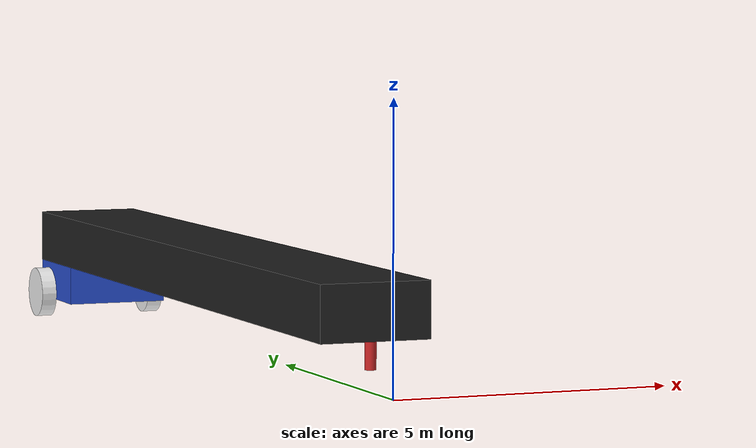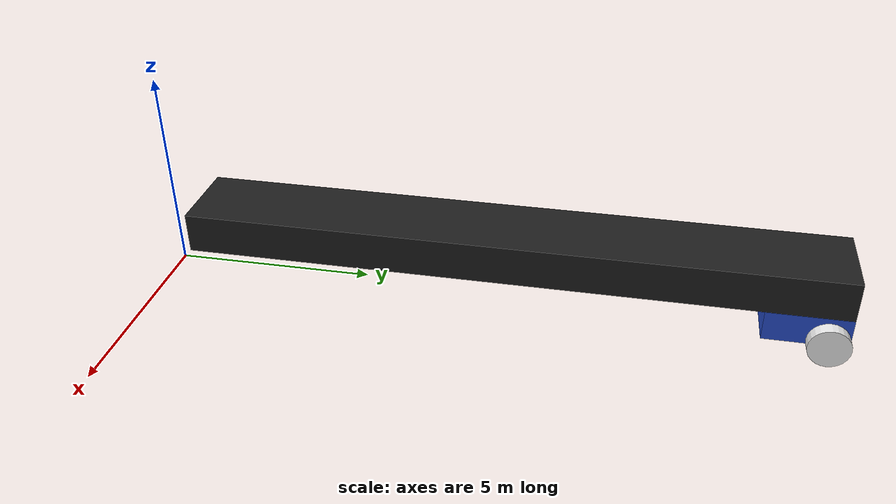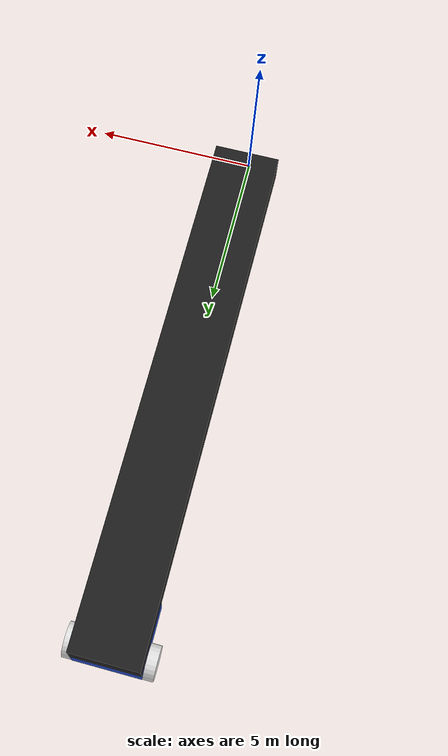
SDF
<?xml version='1.0'?>
<sdf version='1.7'>
  <model name='Trailer'>
    <link name='Trailer_Hitch'>
      <pose>-0 1 0.64 0 -0 0</pose>
      <inertial>
        <pose>0 7.74995 0.749892 0 -0 0</pose>
        <mass>15002</mass>
        <inertia>
          <ixx>321361</ixx>
          <ixy>0</ixy>
          <ixz>0</ixz>
          <iyy>6251.64</iyy>
          <iyz>0.312581</iyz>
          <izz>325109</izz>
        </inertia>
      </inertial>
      <self_collide>0</self_collide>
      <enable_wind>0</enable_wind>
      <kinematic>0</kinematic>
      <visual name='Trailer_Hitch_visual'>
        <pose>0 0 0 0 -0 0</pose>
        <geometry>
          <cylinder>
            <length>0.5</length>
            <radius>0.1</radius>
          </cylinder>
        </geometry>
        <material>
          <script>
            <name>Gazebo/Red</name>
            <uri>file://media/materials/scripts/gazebo.material</uri>
          </script>
          <shader type='pixel'/>
        </material>
        <transparency>0</transparency>
        <cast_shadows>1</cast_shadows>
      </visual>
      <visual name='Trailer_Hitch_fixed_joint_lump__Trailer_Body_visual_1'>
        <pose>0 7.75 0.75 0 -0 0</pose>
        <geometry>
          <box>
            <size>2 16 1</size>
          </box>
        </geometry>
        <material>
          <script>
            <name>Gazebo/Black</name>
            <uri>file://media/materials/scripts/gazebo.material</uri>
          </script>
          <shader type='pixel'/>
        </material>
        <transparency>0</transparency>
        <cast_shadows>1</cast_shadows>
      </visual>
      <visual name='Trailer_Hitch_fixed_joint_lump__Trailer_Bottom_visual_2'>
        <pose>0 14.75 -0.125 0 -0 0</pose>
        <geometry>
          <box>
            <size>2 2 0.75</size>
          </box>Trailer_Body
        </geometry>
        <material>
          <script>
            <name>Gazebo/Blue</name>
            <uri>file://media/materials/scripts/gazebo.material</uri>
          </script>
          <shader type='pixel'/>
        </material>
        <transparency>0</transparency>
        <cast_shadows>1</cast_shadows>
      </visual>
      <collision name='Trailer_Hitch_collision'>
        <laser_retro>0</laser_retro>
        <max_contacts>10</max_contacts>
        <pose>0 0 0 0 -0 0</pose>
        <geometry>
          <cylinder>
            <radius>0.1</radius>
            <length>0.5</length>
          </cylinder>
        </geometry>
        <surface>
          <friction>
            <ode>
              <mu>1</mu>
              <mu2>1</mu2>
              <fdir1>0 0 0</fdir1>
              <slip1>0</slip1>
              <slip2>0</slip2>
            </ode>
            <torsional>
              <coefficient>1</coefficient>
              <patch_radius>0</patch_radius>
              <surface_radius>0</surface_radius>
              <use_patch_radius>1</use_patch_radius>
              <ode>
                <slip>0</slip>
              </ode>
            </torsional>
          </friction>
          <bounce>
            <restitution_coefficient>0</restitution_coefficient>
            <threshold>1e+06</threshold>
          </bounce>
          <contact>
            <collide_without_contact>0</collide_without_contact>
            <collide_without_contact_bitmask>1</collide_without_contact_bitmask>
            <collide_bitmask>1</collide_bitmask>
            <ode>
              <soft_cfm>0</soft_cfm>
              <soft_erp>0.2</soft_erp>
              <kp>1e+13</kp>
              <kd>1</kd>
              <max_vel>0.01</max_vel>
              <min_depth>0</min_depth>
            </ode>
            <bullet>
              <split_impulse>1</split_impulse>
              <split_impulse_penetration_threshold>-0.01</split_impulse_penetration_threshold>
              <soft_cfm>0</soft_cfm>
              <soft_erp>0.2</soft_erp>
              <kp>1e+13</kp>
              <kd>1</kd>
            </bullet>
          </contact>
        </surface>
      </collision>
      <collision name='Trailer_Hitch_fixed_joint_lump__Trailer_Body_collision_1'>
        <laser_retro>0</laser_retro>
        <max_contacts>10</max_contacts>
        <pose>0 7.75 0.55 0 -0 0</pose>
        <geometry>
          <box>
            <size>2 16 1</size>
          </box>
        </geometry>
        <surface>
          <friction>
            <ode>
              <mu>1</mu>
              <mu2>1</mu2>
              <fdir1>0 0 0</fdir1>
              <slip1>0</slip1>
              <slip2>0</slip2>
            </ode>
            <torsional>
              <coefficient>1</coefficient>
              <patch_radius>0</patch_radius>
              <surface_radius>0</surface_radius>
              <use_patch_radius>1</use_patch_radius>
              <ode>
                <slip>0</slip>
              </ode>
            </torsional>
          </friction>
          <bounce>
            <restitution_coefficient>0</restitution_coefficient>
            <threshold>1e+06</threshold>
          </bounce>
          <contact>
            <collide_without_contact>0</collide_without_contact>
            <collide_without_contact_bitmask>1</collide_without_contact_bitmask>
            <collide_bitmask>1</collide_bitmask>
            <ode>
              <soft_cfm>0</soft_cfm>
              <soft_erp>0.2</soft_erp>
              <kp>1e+13</kp>
              <kd>1</kd>
              <max_vel>0.01</max_vel>
              <min_depth>0</min_depth>
            </ode>
            <bullet>
              <split_impulse>1</split_impulse>
              <split_impulse_penetration_threshold>-0.01</split_impulse_penetration_threshold>
              <soft_cfm>0</soft_cfm>
              <soft_erp>0.2</soft_erp>
              <kp>1e+13</kp>
              <kd>1</kd>
            </bullet>
          </contact>
        </surface>
      </collision>
      <collision name='Trailer_Hitch_fixed_joint_lump__Trailer_Bottom_collision_2'>
        <laser_retro>0</laser_retro>
        <max_contacts>10</max_contacts>
        <pose>0 14.75 -0.125 0 -0 0</pose>
        <geometry>
          <box>
            <size>2 2 0.75</size>
          </box>
        </geometry>
        <surface>
          <friction>
            <ode>
              <mu>1</mu>
              <mu2>1</mu2>
              <fdir1>0 0 0</fdir1>
              <slip1>0</slip1>
              <slip2>0</slip2>
            </ode>
            <torsional>
              <coefficient>1</coefficient>
              <patch_radius>0</patch_radius>
              <surface_radius>0</surface_radius>
              <use_patch_radius>1</use_patch_radius>
              <ode>
                <slip>0</slip>
              </ode>
            </torsional>
          </friction>
          <bounce>
            <restitution_coefficient>0</restitution_coefficient>
            <threshold>1e+06</threshold>
          </bounce>
          <contact>
            <collide_without_contact>0</collide_without_contact>
            <collide_without_contact_bitmask>1</collide_without_contact_bitmask>
            <collide_bitmask>1</collide_bitmask>
            <ode>
              <soft_cfm>0</soft_cfm>
              <soft_erp>0.2</soft_erp>
              <kp>1e+13</kp>
              <kd>1</kd>
              <max_vel>0.01</max_vel>
              <min_depth>0</min_depth>
            </ode>
            <bullet>
              <split_impulse>1</split_impulse>
              <split_impulse_penetration_threshold>-0.01</split_impulse_penetration_threshold>
              <soft_cfm>0</soft_cfm>
              <soft_erp>0.2</soft_erp>
              <kp>1e+13</kp>
              <kd>1</kd>
            </bullet>
          </contact>
        </surface>
      </collision>
    </link>
    <link name='Trailer_driv_wheel'>
      <pose>1.15 16.25 0.265 0 -0 0</pose>
      <inertial>
        <pose>0 0 0 0 -0 0</pose>
        <mass>100</mass>
        <inertia>
          <ixx>7</ixx>
          <ixy>0</ixy>
          <ixz>0</ixz>
          <iyy>7</iyy>
          <iyz>0</iyz>
          <izz>12.5</izz>
        </inertia>
      </inertial>
      <self_collide>0</self_collide>
      <enable_wind>0</enable_wind>
      <kinematic>0</kinematic>
      <visual name='Trailer_driv_wheel_visual'>
        <pose>0 0 0 -3.1415 1.57079 3.14159</pose>
        <geometry>
          <cylinder>
            <length>0.3</length>
            <radius>0.5</radius>
          </cylinder>
        </geometry>
        <material>
          <script>
            <name>Gazebo/White</name>
            <uri>file://media/materials/scripts/gazebo.material</uri>
          </script>
          <shader type='pixel'/>
        </material>
        <transparency>0</transparency>
        <cast_shadows>1</cast_shadows>
      </visual>
      <collision name='Trailer_driv_wheel_collision'>
        <laser_retro>0</laser_retro>
        <max_contacts>10</max_contacts>
        <pose>0 0 0 -3.1415 1.57079 3.14159</pose>
        <geometry>
          <cylinder>
            <radius>0.5</radius>
            <length>0.3</length>
          </cylinder>
        </geometry>
        <surface>
          <friction>
            <ode>
              <mu>1</mu>
              <mu2>1</mu2>
              <fdir1>0 0 0</fdir1>
              <slip1>0</slip1>
              <slip2>0</slip2>
            </ode>
            <torsional>
              <coefficient>1</coefficient>
              <patch_radius>0</patch_radius>
              <surface_radius>0</surface_radius>
              <use_patch_radius>1</use_patch_radius>
              <ode>
                <slip>0</slip>
              </ode>
            </torsional>
          </friction>
          <bounce>
            <restitution_coefficient>0</restitution_coefficient>
            <threshold>1e+06</threshold>
          </bounce>
          <contact>
            <collide_without_contact>0</collide_without_contact>
            <collide_without_contact_bitmask>1</collide_without_contact_bitmask>
            <collide_bitmask>1</collide_bitmask>
            <ode>
              <soft_cfm>0</soft_cfm>
              <soft_erp>0.2</soft_erp>
              <kp>1e+13</kp>
              <kd>1</kd>
              <max_vel>0.01</max_vel>
              <min_depth>0</min_depth>
            </ode>
            <bullet>
              <split_impulse>1</split_impulse>
              <split_impulse_penetration_threshold>-0.01</split_impulse_penetration_threshold>
              <soft_cfm>0</soft_cfm>
              <soft_erp>0.2</soft_erp>
              <kp>1e+13</kp>
              <kd>1</kd>
            </bullet>
          </contact>
        </surface>
      </collision>
    </link>
    <link name='Trailer_pass_wheel'>
      <pose>-1.15 16.25 0.265 0 -0 0</pose>
      <inertial>
        <pose>0 0 0 0 -0 0</pose>
        <mass>100</mass>
        <inertia>
          <ixx>7</ixx>
          <ixy>0</ixy>
          <ixz>0</ixz>
          <iyy>7</iyy>
          <iyz>0</iyz>
          <izz>12.5</izz>
        </inertia>
      </inertial>
      <self_collide>0</self_collide>
      <enable_wind>0</enable_wind>
      <kinematic>0</kinematic>
      <visual name='Trailer_pass_wheel_visual'>
        <pose>0 0 0 -3.1415 1.57079 3.14159</pose>
        <geometry>
          <cylinder>
            <length>0.3</length>
            <radius>0.5</radius>
          </cylinder>
        </geometry>
        <material>
          <script>
            <name>Gazebo/White</name>
            <uri>file://media/materials/scripts/gazebo.material</uri>
          </script>
          <shader type='pixel'/>
        </material>
        <transparency>0</transparency>
        <cast_shadows>1</cast_shadows>
      </visual>
      <collision name='Trailer_pass_wheel_collision'>
        <laser_retro>0</laser_retro>
        <max_contacts>10</max_contacts>
        <pose>0 0 0 -3.1415 1.57079 3.14159</pose>
        <geometry>
          <cylinder>
            <radius>0.5</radius>
            <length>0.3</length>
          </cylinder>
        </geometry>
        <surface>
          <friction>
            <ode>
              <mu>1</mu>
              <mu2>1</mu2>
              <fdir1>0 0 0</fdir1>
              <slip1>0</slip1>
              <slip2>0</slip2>
            </ode>
            <torsional>
              <coefficient>1</coefficient>
              <patch_radius>0</patch_radius>
              <surface_radius>0</surface_radius>
              <use_patch_radius>1</use_patch_radius>
              <ode>
                <slip>0</slip>
              </ode>
            </torsional>
          </friction>
          <bounce>
            <restitution_coefficient>0</restitution_coefficient>
            <threshold>1e+06</threshold>
          </bounce>
          <contact>
            <collide_without_contact>0</collide_without_contact>
            <collide_without_contact_bitmask>1</collide_without_contact_bitmask>
            <collide_bitmask>1</collide_bitmask>
            <ode>
              <soft_cfm>0</soft_cfm>
              <soft_erp>0.2</soft_erp>
              <kp>1e+13</kp>
              <kd>1</kd>
              <max_vel>0.01</max_vel>
              <min_depth>0</min_depth>
            </ode>
            <bullet>
              <split_impulse>1</split_impulse>
              <split_impulse_penetration_threshold>-0.01</split_impulse_penetration_threshold>
              <soft_cfm>0</soft_cfm>
              <soft_erp>0.2</soft_erp>
              <kp>1e+13</kp>
              <kd>1</kd>
            </bullet>
          </contact>
        </surface>
      </collision>
    </link>
    <joint name='Fifth_Wheel' type='revolute'>
      <parent>Trailer_Body</parent>
      <child>Trailer_Hitch</child>
      <pose>0 0 0 0 -0 0</pose>
      <axis>
        <xyz>0 0 1</xyz>
        <limit>
          <lower>-1.57</lower>
          <upper>1.57</upper>
          <effort>1e+06</effort>
          <velocity>2000</velocity>
        </limit>
        <dynamics>
          <spring_reference>0</spring_reference>
          <spring_stiffness>0</spring_stiffness>
          <damping>0</damping>
          <friction>0</friction>
        </dynamics>
      </axis>
      <physics>
        <ode>
          <limit>
            <cfm>0</cfm>
            <erp>0.2</erp>
          </limit>
          <suspension>
            <cfm>0</cfm>
            <erp>0.2</erp>
          </suspension>
        </ode>
      </physics>
    </joint>
    <joint name='Trailer_driv_wheel_joint' type='revolute'>
      <parent>Trailer_Hitch</parent>
      <child>Trailer_driv_wheel</child>
      <pose>0 0 0 0 -0 0</pose>
      <axis>
        <xyz>1 0 0</xyz>
        <limit>
          <lower>-1e+16</lower>
          <upper>1e+16</upper>
          <effort>-1</effort>
          <velocity>-1</velocity>
        </limit>
        <dynamics>
          <spring_reference>0</spring_reference>
          <spring_stiffness>0</spring_stiffness>
          <damping>0</damping>
          <friction>0</friction>
        </dynamics>
      </axis>
      <physics>
        <ode>
          <limit>
            <cfm>0</cfm>
            <erp>0.2</erp>
          </limit>
          <suspension>
            <cfm>0</cfm>
            <erp>0.2</erp>
          </suspension>
        </ode>
      </physics>
    </joint>
    <joint name='Trailer_pass_wheel_joint' type='revolute'>
      <parent>Trailer_Hitch</parent>
      <child>Trailer_pass_wheel</child>
      <pose>0 0 0 0 -0 0</pose>
      <axis>
        <xyz>1 0 0</xyz>
        <limit>
          <lower>-1e+16</lower>
          <upper>1e+16</upper>
          <effort>-1</effort>
          <velocity>-1</velocity>
        </limit>
        <dynamics>
          <spring_reference>0</spring_reference>
          <spring_stiffness>0</spring_stiffness>
          <damping>0</damping>
          <friction>0</friction>
        </dynamics>
      </axis>
      <physics>
        <ode>
          <limit>
            <cfm>0</cfm>
            <erp>0.2</erp>
          </limit>
          <suspension>
            <cfm>0</cfm>
            <erp>0.2</erp>
          </suspension>
        </ode>
      </physics>
    </joint>
    <static>0</static>
    <allow_auto_disable>1</allow_auto_disable>
  </model>
</sdf>
